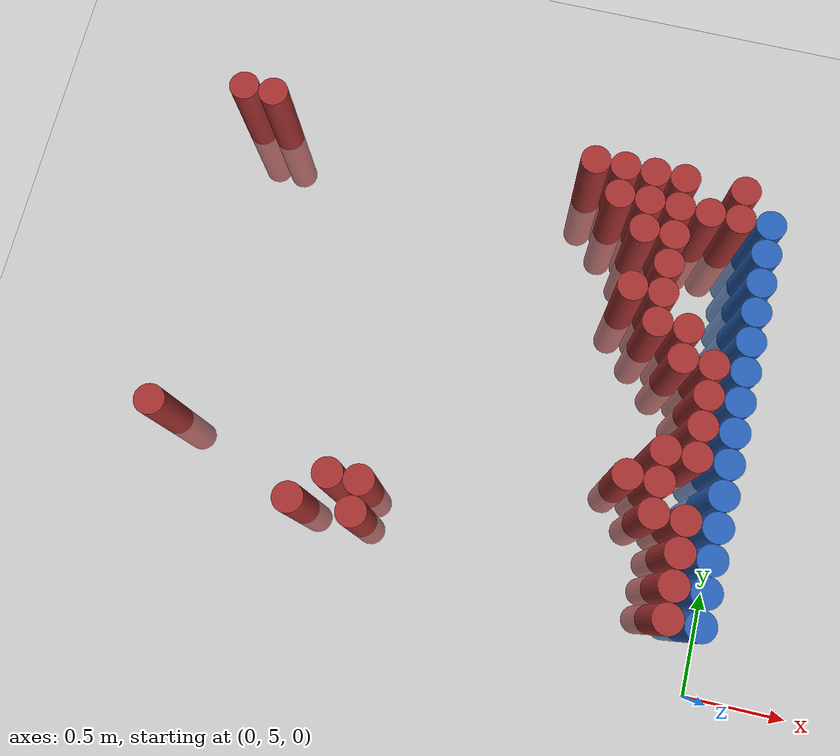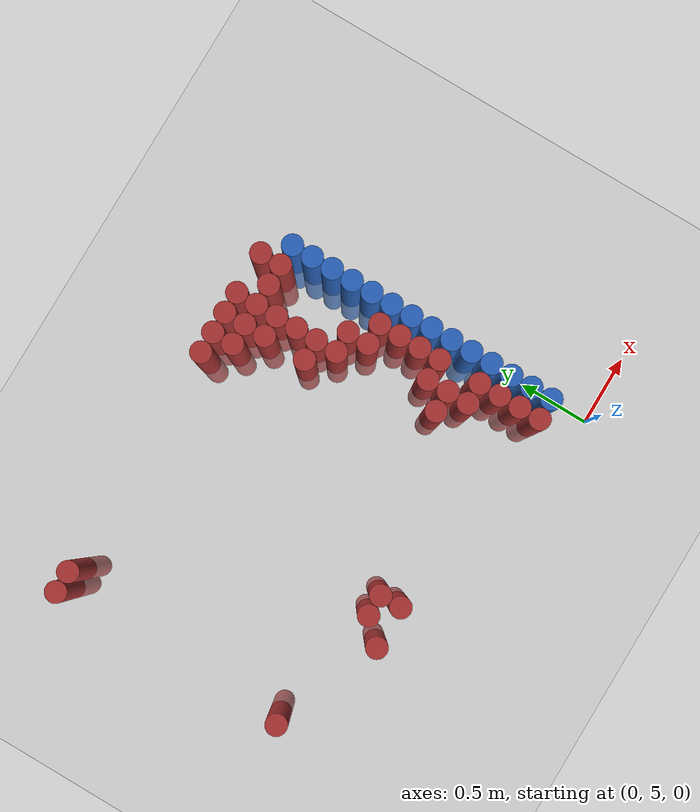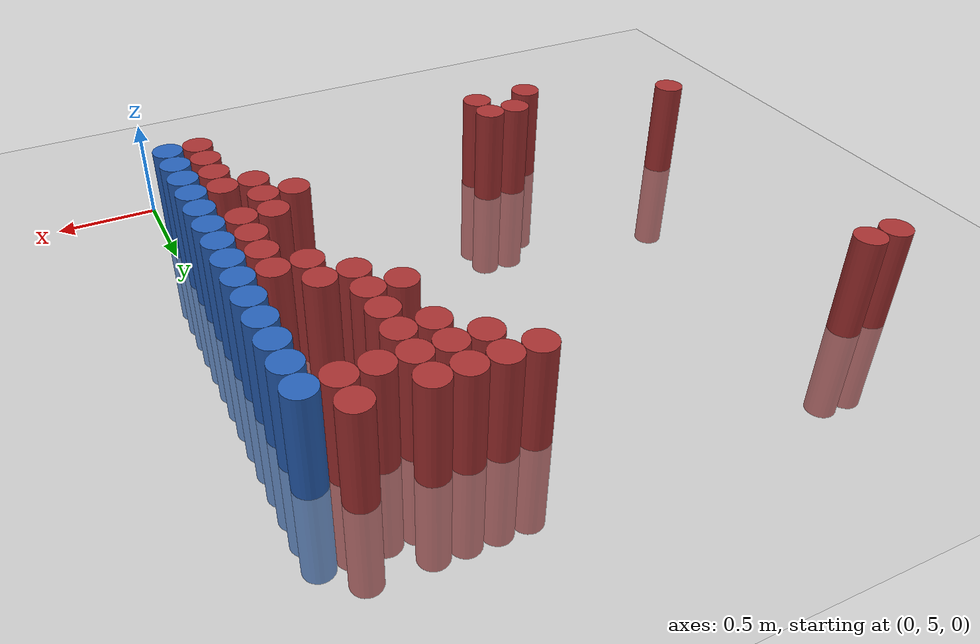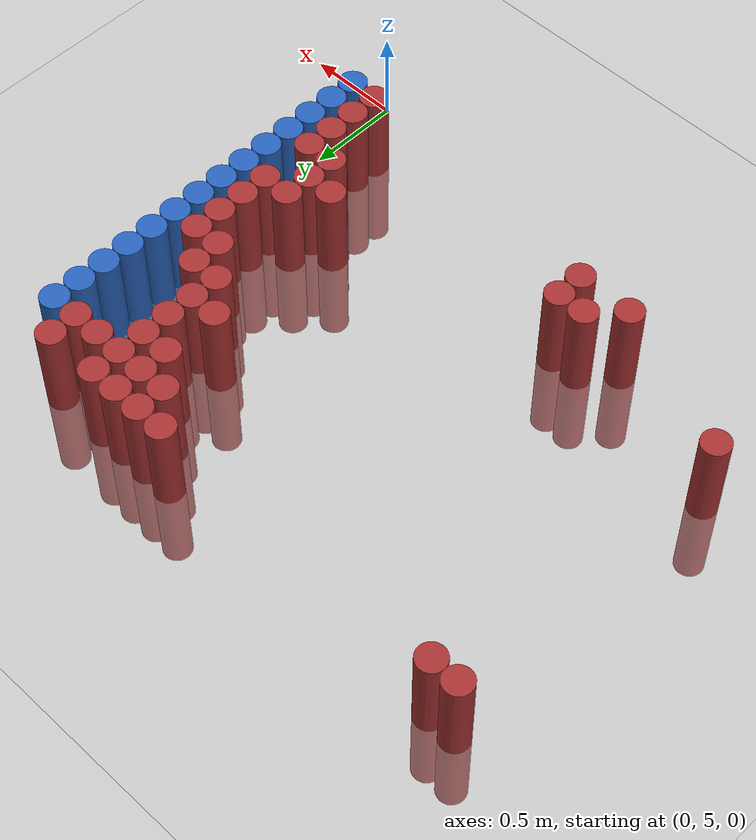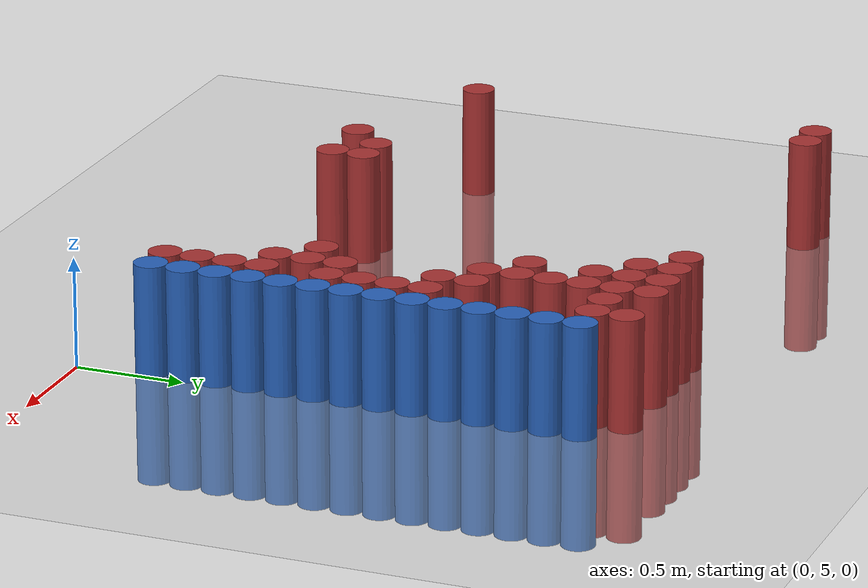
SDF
<sdf version="1.6">
 <world name="default">
  <model name="ground_plane">
   <static>1</static>
   <link name="link">
    <collision name="collision">
     <geometry><plane><normal>0 0 1</normal><size>100 100</size></plane></geometry>
     <surface><friction><ode><mu>100</mu><mu2>50</mu2></ode></friction></surface>
    </collision>
    <visual name="visual">
     <cast_shadows>0</cast_shadows>
     <geometry><plane><normal>0 0 1</normal><size>100 100</size></plane></geometry>
     <material>
      <script><uri>file://media/materials/scripts/gazebo.material</uri><name>Gazebo/Grey</name></script>
     </material>
    </visual>
   </link>
  </model>
  <model name="unit_cylinder_154">
   <static>1</static>
   <pose>-2.775000 5.775000 0.000000 0.000000 0.000000 0.000000</pose>
   <link name="link">
    <inertial>
     <mass>1</mass>
     <inertia><ixx>0.145833</ixx><ixy>0</ixy><ixz>0</ixz><iyy>0.145833</iyy><iyz>0</iyz><izz>0.125</izz></inertia>
    </inertial>
    <collision name="collision">
     <geometry><cylinder><radius>0.075000</radius><length>1</length></cylinder></geometry>
    </collision>
    <visual name="visual">
     <geometry><cylinder><radius>0.075000</radius><length>1</length></cylinder></geometry>
     <material>
      <ambient>0.648000 0.192000 0.192000 1</ambient>
      <diffuse>0.648000 0.192000 0.192000 1</diffuse>
     </material>
     <material>
      <script><name>Gazebo/Grey</name><uri>file://media/materials/scripts/gazebo.material</uri></script>
     </material>
    </visual>
   </link>
  </model>
  <model name="unit_cylinder_155">
   <static>1</static>
   <pose>-2.775000 7.425000 0.000000 0.000000 0.000000 0.000000</pose>
   <link name="link">
    <inertial>
     <mass>1</mass>
     <inertia><ixx>0.145833</ixx><ixy>0</ixy><ixz>0</ixz><iyy>0.145833</iyy><iyz>0</iyz><izz>0.125</izz></inertia>
    </inertial>
    <collision name="collision">
     <geometry><cylinder><radius>0.075000</radius><length>1</length></cylinder></geometry>
    </collision>
    <visual name="visual">
     <geometry><cylinder><radius>0.075000</radius><length>1</length></cylinder></geometry>
     <material>
      <ambient>0.648000 0.192000 0.192000 1</ambient>
      <diffuse>0.648000 0.192000 0.192000 1</diffuse>
     </material>
     <material>
      <script><name>Gazebo/Grey</name><uri>file://media/materials/scripts/gazebo.material</uri></script>
     </material>
    </visual>
   </link>
  </model>
  <model name="unit_cylinder_159">
   <static>1</static>
   <pose>-2.625000 7.425000 0.000000 0.000000 0.000000 0.000000</pose>
   <link name="link">
    <inertial>
     <mass>1</mass>
     <inertia><ixx>0.145833</ixx><ixy>0</ixy><ixz>0</ixz><iyy>0.145833</iyy><iyz>0</iyz><izz>0.125</izz></inertia>
    </inertial>
    <collision name="collision">
     <geometry><cylinder><radius>0.075000</radius><length>1</length></cylinder></geometry>
    </collision>
    <visual name="visual">
     <geometry><cylinder><radius>0.075000</radius><length>1</length></cylinder></geometry>
     <material>
      <ambient>0.648000 0.192000 0.192000 1</ambient>
      <diffuse>0.648000 0.192000 0.192000 1</diffuse>
     </material>
     <material>
      <script><name>Gazebo/Grey</name><uri>file://media/materials/scripts/gazebo.material</uri></script>
     </material>
    </visual>
   </link>
  </model>
  <model name="unit_cylinder_168">
   <static>1</static>
   <pose>-2.025000 5.475000 0.000000 0.000000 0.000000 0.000000</pose>
   <link name="link">
    <inertial>
     <mass>1</mass>
     <inertia><ixx>0.145833</ixx><ixy>0</ixy><ixz>0</ixz><iyy>0.145833</iyy><iyz>0</iyz><izz>0.125</izz></inertia>
    </inertial>
    <collision name="collision">
     <geometry><cylinder><radius>0.075000</radius><length>1</length></cylinder></geometry>
    </collision>
    <visual name="visual">
     <geometry><cylinder><radius>0.075000</radius><length>1</length></cylinder></geometry>
     <material>
      <ambient>0.648000 0.192000 0.192000 1</ambient>
      <diffuse>0.648000 0.192000 0.192000 1</diffuse>
     </material>
     <material>
      <script><name>Gazebo/Grey</name><uri>file://media/materials/scripts/gazebo.material</uri></script>
     </material>
    </visual>
   </link>
  </model>
  <model name="unit_cylinder_171">
   <static>1</static>
   <pose>-1.875000 5.625000 0.000000 0.000000 0.000000 0.000000</pose>
   <link name="link">
    <inertial>
     <mass>1</mass>
     <inertia><ixx>0.145833</ixx><ixy>0</ixy><ixz>0</ixz><iyy>0.145833</iyy><iyz>0</iyz><izz>0.125</izz></inertia>
    </inertial>
    <collision name="collision">
     <geometry><cylinder><radius>0.075000</radius><length>1</length></cylinder></geometry>
    </collision>
    <visual name="visual">
     <geometry><cylinder><radius>0.075000</radius><length>1</length></cylinder></geometry>
     <material>
      <ambient>0.648000 0.192000 0.192000 1</ambient>
      <diffuse>0.648000 0.192000 0.192000 1</diffuse>
     </material>
     <material>
      <script><name>Gazebo/Grey</name><uri>file://media/materials/scripts/gazebo.material</uri></script>
     </material>
    </visual>
   </link>
  </model>
  <model name="unit_cylinder_176">
   <static>1</static>
   <pose>-1.725000 5.475000 0.000000 0.000000 0.000000 0.000000</pose>
   <link name="link">
    <inertial>
     <mass>1</mass>
     <inertia><ixx>0.145833</ixx><ixy>0</ixy><ixz>0</ixz><iyy>0.145833</iyy><iyz>0</iyz><izz>0.125</izz></inertia>
    </inertial>
    <collision name="collision">
     <geometry><cylinder><radius>0.075000</radius><length>1</length></cylinder></geometry>
    </collision>
    <visual name="visual">
     <geometry><cylinder><radius>0.075000</radius><length>1</length></cylinder></geometry>
     <material>
      <ambient>0.648000 0.192000 0.192000 1</ambient>
      <diffuse>0.648000 0.192000 0.192000 1</diffuse>
     </material>
     <material>
      <script><name>Gazebo/Grey</name><uri>file://media/materials/scripts/gazebo.material</uri></script>
     </material>
    </visual>
   </link>
  </model>
  <model name="unit_cylinder_177">
   <static>1</static>
   <pose>-1.725000 5.625000 0.000000 0.000000 0.000000 0.000000</pose>
   <link name="link">
    <inertial>
     <mass>1</mass>
     <inertia><ixx>0.145833</ixx><ixy>0</ixy><ixz>0</ixz><iyy>0.145833</iyy><iyz>0</iyz><izz>0.125</izz></inertia>
    </inertial>
    <collision name="collision">
     <geometry><cylinder><radius>0.075000</radius><length>1</length></cylinder></geometry>
    </collision>
    <visual name="visual">
     <geometry><cylinder><radius>0.075000</radius><length>1</length></cylinder></geometry>
     <material>
      <ambient>0.648000 0.192000 0.192000 1</ambient>
      <diffuse>0.648000 0.192000 0.192000 1</diffuse>
     </material>
     <material>
      <script><name>Gazebo/Grey</name><uri>file://media/materials/scripts/gazebo.material</uri></script>
     </material>
    </visual>
   </link>
  </model>
  <model name="unit_cylinder_183">
   <static>1</static>
   <pose>-0.975000 7.425000 0.000000 0.000000 0.000000 0.000000</pose>
   <link name="link">
    <inertial>
     <mass>1</mass>
     <inertia><ixx>0.145833</ixx><ixy>0</ixy><ixz>0</ixz><iyy>0.145833</iyy><iyz>0</iyz><izz>0.125</izz></inertia>
    </inertial>
    <collision name="collision">
     <geometry><cylinder><radius>0.075000</radius><length>1</length></cylinder></geometry>
    </collision>
    <visual name="visual">
     <geometry><cylinder><radius>0.075000</radius><length>1</length></cylinder></geometry>
     <material>
      <ambient>0.648000 0.192000 0.192000 1</ambient>
      <diffuse>0.648000 0.192000 0.192000 1</diffuse>
     </material>
     <material>
      <script><name>Gazebo/Grey</name><uri>file://media/materials/scripts/gazebo.material</uri></script>
     </material>
    </visual>
   </link>
  </model>
  <model name="unit_cylinder_184">
   <static>1</static>
   <pose>-0.825000 7.275000 0.000000 0.000000 0.000000 0.000000</pose>
   <link name="link">
    <inertial>
     <mass>1</mass>
     <inertia><ixx>0.145833</ixx><ixy>0</ixy><ixz>0</ixz><iyy>0.145833</iyy><iyz>0</iyz><izz>0.125</izz></inertia>
    </inertial>
    <collision name="collision">
     <geometry><cylinder><radius>0.075000</radius><length>1</length></cylinder></geometry>
    </collision>
    <visual name="visual">
     <geometry><cylinder><radius>0.075000</radius><length>1</length></cylinder></geometry>
     <material>
      <ambient>0.648000 0.192000 0.192000 1</ambient>
      <diffuse>0.648000 0.192000 0.192000 1</diffuse>
     </material>
     <material>
      <script><name>Gazebo/Grey</name><uri>file://media/materials/scripts/gazebo.material</uri></script>
     </material>
    </visual>
   </link>
  </model>
  <model name="unit_cylinder_185">
   <static>1</static>
   <pose>-0.825000 7.425000 0.000000 0.000000 0.000000 0.000000</pose>
   <link name="link">
    <inertial>
     <mass>1</mass>
     <inertia><ixx>0.145833</ixx><ixy>0</ixy><ixz>0</ixz><iyy>0.145833</iyy><iyz>0</iyz><izz>0.125</izz></inertia>
    </inertial>
    <collision name="collision">
     <geometry><cylinder><radius>0.075000</radius><length>1</length></cylinder></geometry>
    </collision>
    <visual name="visual">
     <geometry><cylinder><radius>0.075000</radius><length>1</length></cylinder></geometry>
     <material>
      <ambient>0.648000 0.192000 0.192000 1</ambient>
      <diffuse>0.648000 0.192000 0.192000 1</diffuse>
     </material>
     <material>
      <script><name>Gazebo/Grey</name><uri>file://media/materials/scripts/gazebo.material</uri></script>
     </material>
    </visual>
   </link>
  </model>
  <model name="unit_cylinder_188">
   <static>1</static>
   <pose>-0.675000 6.825000 0.000000 0.000000 0.000000 0.000000</pose>
   <link name="link">
    <inertial>
     <mass>1</mass>
     <inertia><ixx>0.145833</ixx><ixy>0</ixy><ixz>0</ixz><iyy>0.145833</iyy><iyz>0</iyz><izz>0.125</izz></inertia>
    </inertial>
    <collision name="collision">
     <geometry><cylinder><radius>0.075000</radius><length>1</length></cylinder></geometry>
    </collision>
    <visual name="visual">
     <geometry><cylinder><radius>0.075000</radius><length>1</length></cylinder></geometry>
     <material>
      <ambient>0.648000 0.192000 0.192000 1</ambient>
      <diffuse>0.648000 0.192000 0.192000 1</diffuse>
     </material>
     <material>
      <script><name>Gazebo/Grey</name><uri>file://media/materials/scripts/gazebo.material</uri></script>
     </material>
    </visual>
   </link>
  </model>
  <model name="unit_cylinder_189">
   <static>1</static>
   <pose>-0.675000 7.125000 0.000000 0.000000 0.000000 0.000000</pose>
   <link name="link">
    <inertial>
     <mass>1</mass>
     <inertia><ixx>0.145833</ixx><ixy>0</ixy><ixz>0</ixz><iyy>0.145833</iyy><iyz>0</iyz><izz>0.125</izz></inertia>
    </inertial>
    <collision name="collision">
     <geometry><cylinder><radius>0.075000</radius><length>1</length></cylinder></geometry>
    </collision>
    <visual name="visual">
     <geometry><cylinder><radius>0.075000</radius><length>1</length></cylinder></geometry>
     <material>
      <ambient>0.648000 0.192000 0.192000 1</ambient>
      <diffuse>0.648000 0.192000 0.192000 1</diffuse>
     </material>
     <material>
      <script><name>Gazebo/Grey</name><uri>file://media/materials/scripts/gazebo.material</uri></script>
     </material>
    </visual>
   </link>
  </model>
  <model name="unit_cylinder_190">
   <static>1</static>
   <pose>-0.675000 7.275000 0.000000 0.000000 0.000000 0.000000</pose>
   <link name="link">
    <inertial>
     <mass>1</mass>
     <inertia><ixx>0.145833</ixx><ixy>0</ixy><ixz>0</ixz><iyy>0.145833</iyy><iyz>0</iyz><izz>0.125</izz></inertia>
    </inertial>
    <collision name="collision">
     <geometry><cylinder><radius>0.075000</radius><length>1</length></cylinder></geometry>
    </collision>
    <visual name="visual">
     <geometry><cylinder><radius>0.075000</radius><length>1</length></cylinder></geometry>
     <material>
      <ambient>0.648000 0.192000 0.192000 1</ambient>
      <diffuse>0.648000 0.192000 0.192000 1</diffuse>
     </material>
     <material>
      <script><name>Gazebo/Grey</name><uri>file://media/materials/scripts/gazebo.material</uri></script>
     </material>
    </visual>
   </link>
  </model>
  <model name="unit_cylinder_191">
   <static>1</static>
   <pose>-0.675000 7.425000 0.000000 0.000000 0.000000 0.000000</pose>
   <link name="link">
    <inertial>
     <mass>1</mass>
     <inertia><ixx>0.145833</ixx><ixy>0</ixy><ixz>0</ixz><iyy>0.145833</iyy><iyz>0</iyz><izz>0.125</izz></inertia>
    </inertial>
    <collision name="collision">
     <geometry><cylinder><radius>0.075000</radius><length>1</length></cylinder></geometry>
    </collision>
    <visual name="visual">
     <geometry><cylinder><radius>0.075000</radius><length>1</length></cylinder></geometry>
     <material>
      <ambient>0.648000 0.192000 0.192000 1</ambient>
      <diffuse>0.648000 0.192000 0.192000 1</diffuse>
     </material>
     <material>
      <script><name>Gazebo/Grey</name><uri>file://media/materials/scripts/gazebo.material</uri></script>
     </material>
    </visual>
   </link>
  </model>
  <model name="unit_cylinder_194">
   <static>1</static>
   <pose>-0.525000 5.925000 0.000000 0.000000 0.000000 0.000000</pose>
   <link name="link">
    <inertial>
     <mass>1</mass>
     <inertia><ixx>0.145833</ixx><ixy>0</ixy><ixz>0</ixz><iyy>0.145833</iyy><iyz>0</iyz><izz>0.125</izz></inertia>
    </inertial>
    <collision name="collision">
     <geometry><cylinder><radius>0.075000</radius><length>1</length></cylinder></geometry>
    </collision>
    <visual name="visual">
     <geometry><cylinder><radius>0.075000</radius><length>1</length></cylinder></geometry>
     <material>
      <ambient>0.648000 0.192000 0.192000 1</ambient>
      <diffuse>0.648000 0.192000 0.192000 1</diffuse>
     </material>
     <material>
      <script><name>Gazebo/Grey</name><uri>file://media/materials/scripts/gazebo.material</uri></script>
     </material>
    </visual>
   </link>
  </model>
  <model name="unit_cylinder_195">
   <static>1</static>
   <pose>-0.525000 6.675000 0.000000 0.000000 0.000000 0.000000</pose>
   <link name="link">
    <inertial>
     <mass>1</mass>
     <inertia><ixx>0.145833</ixx><ixy>0</ixy><ixz>0</ixz><iyy>0.145833</iyy><iyz>0</iyz><izz>0.125</izz></inertia>
    </inertial>
    <collision name="collision">
     <geometry><cylinder><radius>0.075000</radius><length>1</length></cylinder></geometry>
    </collision>
    <visual name="visual">
     <geometry><cylinder><radius>0.075000</radius><length>1</length></cylinder></geometry>
     <material>
      <ambient>0.648000 0.192000 0.192000 1</ambient>
      <diffuse>0.648000 0.192000 0.192000 1</diffuse>
     </material>
     <material>
      <script><name>Gazebo/Grey</name><uri>file://media/materials/scripts/gazebo.material</uri></script>
     </material>
    </visual>
   </link>
  </model>
  <model name="unit_cylinder_196">
   <static>1</static>
   <pose>-0.525000 6.825000 0.000000 0.000000 0.000000 0.000000</pose>
   <link name="link">
    <inertial>
     <mass>1</mass>
     <inertia><ixx>0.145833</ixx><ixy>0</ixy><ixz>0</ixz><iyy>0.145833</iyy><iyz>0</iyz><izz>0.125</izz></inertia>
    </inertial>
    <collision name="collision">
     <geometry><cylinder><radius>0.075000</radius><length>1</length></cylinder></geometry>
    </collision>
    <visual name="visual">
     <geometry><cylinder><radius>0.075000</radius><length>1</length></cylinder></geometry>
     <material>
      <ambient>0.648000 0.192000 0.192000 1</ambient>
      <diffuse>0.648000 0.192000 0.192000 1</diffuse>
     </material>
     <material>
      <script><name>Gazebo/Grey</name><uri>file://media/materials/scripts/gazebo.material</uri></script>
     </material>
    </visual>
   </link>
  </model>
  <model name="unit_cylinder_197">
   <static>1</static>
   <pose>-0.525000 6.975000 0.000000 0.000000 0.000000 0.000000</pose>
   <link name="link">
    <inertial>
     <mass>1</mass>
     <inertia><ixx>0.145833</ixx><ixy>0</ixy><ixz>0</ixz><iyy>0.145833</iyy><iyz>0</iyz><izz>0.125</izz></inertia>
    </inertial>
    <collision name="collision">
     <geometry><cylinder><radius>0.075000</radius><length>1</length></cylinder></geometry>
    </collision>
    <visual name="visual">
     <geometry><cylinder><radius>0.075000</radius><length>1</length></cylinder></geometry>
     <material>
      <ambient>0.648000 0.192000 0.192000 1</ambient>
      <diffuse>0.648000 0.192000 0.192000 1</diffuse>
     </material>
     <material>
      <script><name>Gazebo/Grey</name><uri>file://media/materials/scripts/gazebo.material</uri></script>
     </material>
    </visual>
   </link>
  </model>
  <model name="unit_cylinder_198">
   <static>1</static>
   <pose>-0.525000 7.125000 0.000000 0.000000 0.000000 0.000000</pose>
   <link name="link">
    <inertial>
     <mass>1</mass>
     <inertia><ixx>0.145833</ixx><ixy>0</ixy><ixz>0</ixz><iyy>0.145833</iyy><iyz>0</iyz><izz>0.125</izz></inertia>
    </inertial>
    <collision name="collision">
     <geometry><cylinder><radius>0.075000</radius><length>1</length></cylinder></geometry>
    </collision>
    <visual name="visual">
     <geometry><cylinder><radius>0.075000</radius><length>1</length></cylinder></geometry>
     <material>
      <ambient>0.648000 0.192000 0.192000 1</ambient>
      <diffuse>0.648000 0.192000 0.192000 1</diffuse>
     </material>
     <material>
      <script><name>Gazebo/Grey</name><uri>file://media/materials/scripts/gazebo.material</uri></script>
     </material>
    </visual>
   </link>
  </model>
  <model name="unit_cylinder_199">
   <static>1</static>
   <pose>-0.525000 7.275000 0.000000 0.000000 0.000000 0.000000</pose>
   <link name="link">
    <inertial>
     <mass>1</mass>
     <inertia><ixx>0.145833</ixx><ixy>0</ixy><ixz>0</ixz><iyy>0.145833</iyy><iyz>0</iyz><izz>0.125</izz></inertia>
    </inertial>
    <collision name="collision">
     <geometry><cylinder><radius>0.075000</radius><length>1</length></cylinder></geometry>
    </collision>
    <visual name="visual">
     <geometry><cylinder><radius>0.075000</radius><length>1</length></cylinder></geometry>
     <material>
      <ambient>0.648000 0.192000 0.192000 1</ambient>
      <diffuse>0.648000 0.192000 0.192000 1</diffuse>
     </material>
     <material>
      <script><name>Gazebo/Grey</name><uri>file://media/materials/scripts/gazebo.material</uri></script>
     </material>
    </visual>
   </link>
  </model>
  <model name="unit_cylinder_200">
   <static>1</static>
   <pose>-0.525000 7.425000 0.000000 0.000000 0.000000 0.000000</pose>
   <link name="link">
    <inertial>
     <mass>1</mass>
     <inertia><ixx>0.145833</ixx><ixy>0</ixy><ixz>0</ixz><iyy>0.145833</iyy><iyz>0</iyz><izz>0.125</izz></inertia>
    </inertial>
    <collision name="collision">
     <geometry><cylinder><radius>0.075000</radius><length>1</length></cylinder></geometry>
    </collision>
    <visual name="visual">
     <geometry><cylinder><radius>0.075000</radius><length>1</length></cylinder></geometry>
     <material>
      <ambient>0.648000 0.192000 0.192000 1</ambient>
      <diffuse>0.648000 0.192000 0.192000 1</diffuse>
     </material>
     <material>
      <script><name>Gazebo/Grey</name><uri>file://media/materials/scripts/gazebo.material</uri></script>
     </material>
    </visual>
   </link>
  </model>
  <model name="unit_cylinder_201">
   <static>1</static>
   <pose>-0.375000 5.775000 0.000000 0.000000 0.000000 0.000000</pose>
   <link name="link">
    <inertial>
     <mass>1</mass>
     <inertia><ixx>0.145833</ixx><ixy>0</ixy><ixz>0</ixz><iyy>0.145833</iyy><iyz>0</iyz><izz>0.125</izz></inertia>
    </inertial>
    <collision name="collision">
     <geometry><cylinder><radius>0.075000</radius><length>1</length></cylinder></geometry>
    </collision>
    <visual name="visual">
     <geometry><cylinder><radius>0.075000</radius><length>1</length></cylinder></geometry>
     <material>
      <ambient>0.648000 0.192000 0.192000 1</ambient>
      <diffuse>0.648000 0.192000 0.192000 1</diffuse>
     </material>
     <material>
      <script><name>Gazebo/Grey</name><uri>file://media/materials/scripts/gazebo.material</uri></script>
     </material>
    </visual>
   </link>
  </model>
  <model name="unit_cylinder_202">
   <static>1</static>
   <pose>-0.375000 5.925000 0.000000 0.000000 0.000000 0.000000</pose>
   <link name="link">
    <inertial>
     <mass>1</mass>
     <inertia><ixx>0.145833</ixx><ixy>0</ixy><ixz>0</ixz><iyy>0.145833</iyy><iyz>0</iyz><izz>0.125</izz></inertia>
    </inertial>
    <collision name="collision">
     <geometry><cylinder><radius>0.075000</radius><length>1</length></cylinder></geometry>
    </collision>
    <visual name="visual">
     <geometry><cylinder><radius>0.075000</radius><length>1</length></cylinder></geometry>
     <material>
      <ambient>0.648000 0.192000 0.192000 1</ambient>
      <diffuse>0.648000 0.192000 0.192000 1</diffuse>
     </material>
     <material>
      <script><name>Gazebo/Grey</name><uri>file://media/materials/scripts/gazebo.material</uri></script>
     </material>
    </visual>
   </link>
  </model>
  <model name="unit_cylinder_203">
   <static>1</static>
   <pose>-0.375000 6.075000 0.000000 0.000000 0.000000 0.000000</pose>
   <link name="link">
    <inertial>
     <mass>1</mass>
     <inertia><ixx>0.145833</ixx><ixy>0</ixy><ixz>0</ixz><iyy>0.145833</iyy><iyz>0</iyz><izz>0.125</izz></inertia>
    </inertial>
    <collision name="collision">
     <geometry><cylinder><radius>0.075000</radius><length>1</length></cylinder></geometry>
    </collision>
    <visual name="visual">
     <geometry><cylinder><radius>0.075000</radius><length>1</length></cylinder></geometry>
     <material>
      <ambient>0.648000 0.192000 0.192000 1</ambient>
      <diffuse>0.648000 0.192000 0.192000 1</diffuse>
     </material>
     <material>
      <script><name>Gazebo/Grey</name><uri>file://media/materials/scripts/gazebo.material</uri></script>
     </material>
    </visual>
   </link>
  </model>
  <model name="unit_cylinder_204">
   <static>1</static>
   <pose>-0.375000 6.525000 0.000000 0.000000 0.000000 0.000000</pose>
   <link name="link">
    <inertial>
     <mass>1</mass>
     <inertia><ixx>0.145833</ixx><ixy>0</ixy><ixz>0</ixz><iyy>0.145833</iyy><iyz>0</iyz><izz>0.125</izz></inertia>
    </inertial>
    <collision name="collision">
     <geometry><cylinder><radius>0.075000</radius><length>1</length></cylinder></geometry>
    </collision>
    <visual name="visual">
     <geometry><cylinder><radius>0.075000</radius><length>1</length></cylinder></geometry>
     <material>
      <ambient>0.648000 0.192000 0.192000 1</ambient>
      <diffuse>0.648000 0.192000 0.192000 1</diffuse>
     </material>
     <material>
      <script><name>Gazebo/Grey</name><uri>file://media/materials/scripts/gazebo.material</uri></script>
     </material>
    </visual>
   </link>
  </model>
  <model name="unit_cylinder_205">
   <static>1</static>
   <pose>-0.375000 6.675000 0.000000 0.000000 0.000000 0.000000</pose>
   <link name="link">
    <inertial>
     <mass>1</mass>
     <inertia><ixx>0.145833</ixx><ixy>0</ixy><ixz>0</ixz><iyy>0.145833</iyy><iyz>0</iyz><izz>0.125</izz></inertia>
    </inertial>
    <collision name="collision">
     <geometry><cylinder><radius>0.075000</radius><length>1</length></cylinder></geometry>
    </collision>
    <visual name="visual">
     <geometry><cylinder><radius>0.075000</radius><length>1</length></cylinder></geometry>
     <material>
      <ambient>0.648000 0.192000 0.192000 1</ambient>
      <diffuse>0.648000 0.192000 0.192000 1</diffuse>
     </material>
     <material>
      <script><name>Gazebo/Grey</name><uri>file://media/materials/scripts/gazebo.material</uri></script>
     </material>
    </visual>
   </link>
  </model>
  <model name="unit_cylinder_206">
   <static>1</static>
   <pose>-0.375000 7.275000 0.000000 0.000000 0.000000 0.000000</pose>
   <link name="link">
    <inertial>
     <mass>1</mass>
     <inertia><ixx>0.145833</ixx><ixy>0</ixy><ixz>0</ixz><iyy>0.145833</iyy><iyz>0</iyz><izz>0.125</izz></inertia>
    </inertial>
    <collision name="collision">
     <geometry><cylinder><radius>0.075000</radius><length>1</length></cylinder></geometry>
    </collision>
    <visual name="visual">
     <geometry><cylinder><radius>0.075000</radius><length>1</length></cylinder></geometry>
     <material>
      <ambient>0.648000 0.192000 0.192000 1</ambient>
      <diffuse>0.648000 0.192000 0.192000 1</diffuse>
     </material>
     <material>
      <script><name>Gazebo/Grey</name><uri>file://media/materials/scripts/gazebo.material</uri></script>
     </material>
    </visual>
   </link>
  </model>
  <model name="unit_cylinder_208">
   <static>1</static>
   <pose>-0.225000 5.325000 0.000000 0.000000 0.000000 0.000000</pose>
   <link name="link">
    <inertial>
     <mass>1</mass>
     <inertia><ixx>0.145833</ixx><ixy>0</ixy><ixz>0</ixz><iyy>0.145833</iyy><iyz>0</iyz><izz>0.125</izz></inertia>
    </inertial>
    <collision name="collision">
     <geometry><cylinder><radius>0.075000</radius><length>1</length></cylinder></geometry>
    </collision>
    <visual name="visual">
     <geometry><cylinder><radius>0.075000</radius><length>1</length></cylinder></geometry>
     <material>
      <ambient>0.648000 0.192000 0.192000 1</ambient>
      <diffuse>0.648000 0.192000 0.192000 1</diffuse>
     </material>
     <material>
      <script><name>Gazebo/Grey</name><uri>file://media/materials/scripts/gazebo.material</uri></script>
     </material>
    </visual>
   </link>
  </model>
  <model name="unit_cylinder_209">
   <static>1</static>
   <pose>-0.225000 5.475000 0.000000 0.000000 0.000000 0.000000</pose>
   <link name="link">
    <inertial>
     <mass>1</mass>
     <inertia><ixx>0.145833</ixx><ixy>0</ixy><ixz>0</ixz><iyy>0.145833</iyy><iyz>0</iyz><izz>0.125</izz></inertia>
    </inertial>
    <collision name="collision">
     <geometry><cylinder><radius>0.075000</radius><length>1</length></cylinder></geometry>
    </collision>
    <visual name="visual">
     <geometry><cylinder><radius>0.075000</radius><length>1</length></cylinder></geometry>
     <material>
      <ambient>0.648000 0.192000 0.192000 1</ambient>
      <diffuse>0.648000 0.192000 0.192000 1</diffuse>
     </material>
     <material>
      <script><name>Gazebo/Grey</name><uri>file://media/materials/scripts/gazebo.material</uri></script>
     </material>
    </visual>
   </link>
  </model>
  <model name="unit_cylinder_210">
   <static>1</static>
   <pose>-0.225000 5.625000 0.000000 0.000000 0.000000 0.000000</pose>
   <link name="link">
    <inertial>
     <mass>1</mass>
     <inertia><ixx>0.145833</ixx><ixy>0</ixy><ixz>0</ixz><iyy>0.145833</iyy><iyz>0</iyz><izz>0.125</izz></inertia>
    </inertial>
    <collision name="collision">
     <geometry><cylinder><radius>0.075000</radius><length>1</length></cylinder></geometry>
    </collision>
    <visual name="visual">
     <geometry><cylinder><radius>0.075000</radius><length>1</length></cylinder></geometry>
     <material>
      <ambient>0.648000 0.192000 0.192000 1</ambient>
      <diffuse>0.648000 0.192000 0.192000 1</diffuse>
     </material>
     <material>
      <script><name>Gazebo/Grey</name><uri>file://media/materials/scripts/gazebo.material</uri></script>
     </material>
    </visual>
   </link>
  </model>
  <model name="unit_cylinder_211">
   <static>1</static>
   <pose>-0.225000 5.775000 0.000000 0.000000 0.000000 0.000000</pose>
   <link name="link">
    <inertial>
     <mass>1</mass>
     <inertia><ixx>0.145833</ixx><ixy>0</ixy><ixz>0</ixz><iyy>0.145833</iyy><iyz>0</iyz><izz>0.125</izz></inertia>
    </inertial>
    <collision name="collision">
     <geometry><cylinder><radius>0.075000</radius><length>1</length></cylinder></geometry>
    </collision>
    <visual name="visual">
     <geometry><cylinder><radius>0.075000</radius><length>1</length></cylinder></geometry>
     <material>
      <ambient>0.648000 0.192000 0.192000 1</ambient>
      <diffuse>0.648000 0.192000 0.192000 1</diffuse>
     </material>
     <material>
      <script><name>Gazebo/Grey</name><uri>file://media/materials/scripts/gazebo.material</uri></script>
     </material>
    </visual>
   </link>
  </model>
  <model name="unit_cylinder_212">
   <static>1</static>
   <pose>-0.225000 6.075000 0.000000 0.000000 0.000000 0.000000</pose>
   <link name="link">
    <inertial>
     <mass>1</mass>
     <inertia><ixx>0.145833</ixx><ixy>0</ixy><ixz>0</ixz><iyy>0.145833</iyy><iyz>0</iyz><izz>0.125</izz></inertia>
    </inertial>
    <collision name="collision">
     <geometry><cylinder><radius>0.075000</radius><length>1</length></cylinder></geometry>
    </collision>
    <visual name="visual">
     <geometry><cylinder><radius>0.075000</radius><length>1</length></cylinder></geometry>
     <material>
      <ambient>0.648000 0.192000 0.192000 1</ambient>
      <diffuse>0.648000 0.192000 0.192000 1</diffuse>
     </material>
     <material>
      <script><name>Gazebo/Grey</name><uri>file://media/materials/scripts/gazebo.material</uri></script>
     </material>
    </visual>
   </link>
  </model>
  <model name="unit_cylinder_213">
   <static>1</static>
   <pose>-0.225000 6.225000 0.000000 0.000000 0.000000 0.000000</pose>
   <link name="link">
    <inertial>
     <mass>1</mass>
     <inertia><ixx>0.145833</ixx><ixy>0</ixy><ixz>0</ixz><iyy>0.145833</iyy><iyz>0</iyz><izz>0.125</izz></inertia>
    </inertial>
    <collision name="collision">
     <geometry><cylinder><radius>0.075000</radius><length>1</length></cylinder></geometry>
    </collision>
    <visual name="visual">
     <geometry><cylinder><radius>0.075000</radius><length>1</length></cylinder></geometry>
     <material>
      <ambient>0.648000 0.192000 0.192000 1</ambient>
      <diffuse>0.648000 0.192000 0.192000 1</diffuse>
     </material>
     <material>
      <script><name>Gazebo/Grey</name><uri>file://media/materials/scripts/gazebo.material</uri></script>
     </material>
    </visual>
   </link>
  </model>
  <model name="unit_cylinder_214">
   <static>1</static>
   <pose>-0.225000 6.375000 0.000000 0.000000 0.000000 0.000000</pose>
   <link name="link">
    <inertial>
     <mass>1</mass>
     <inertia><ixx>0.145833</ixx><ixy>0</ixy><ixz>0</ixz><iyy>0.145833</iyy><iyz>0</iyz><izz>0.125</izz></inertia>
    </inertial>
    <collision name="collision">
     <geometry><cylinder><radius>0.075000</radius><length>1</length></cylinder></geometry>
    </collision>
    <visual name="visual">
     <geometry><cylinder><radius>0.075000</radius><length>1</length></cylinder></geometry>
     <material>
      <ambient>0.648000 0.192000 0.192000 1</ambient>
      <diffuse>0.648000 0.192000 0.192000 1</diffuse>
     </material>
     <material>
      <script><name>Gazebo/Grey</name><uri>file://media/materials/scripts/gazebo.material</uri></script>
     </material>
    </visual>
   </link>
  </model>
  <model name="unit_cylinder_215">
   <static>1</static>
   <pose>-0.225000 6.525000 0.000000 0.000000 0.000000 0.000000</pose>
   <link name="link">
    <inertial>
     <mass>1</mass>
     <inertia><ixx>0.145833</ixx><ixy>0</ixy><ixz>0</ixz><iyy>0.145833</iyy><iyz>0</iyz><izz>0.125</izz></inertia>
    </inertial>
    <collision name="collision">
     <geometry><cylinder><radius>0.075000</radius><length>1</length></cylinder></geometry>
    </collision>
    <visual name="visual">
     <geometry><cylinder><radius>0.075000</radius><length>1</length></cylinder></geometry>
     <material>
      <ambient>0.648000 0.192000 0.192000 1</ambient>
      <diffuse>0.648000 0.192000 0.192000 1</diffuse>
     </material>
     <material>
      <script><name>Gazebo/Grey</name><uri>file://media/materials/scripts/gazebo.material</uri></script>
     </material>
    </visual>
   </link>
  </model>
  <model name="unit_cylinder_216">
   <static>1</static>
   <pose>-0.225000 7.275000 0.000000 0.000000 0.000000 0.000000</pose>
   <link name="link">
    <inertial>
     <mass>1</mass>
     <inertia><ixx>0.145833</ixx><ixy>0</ixy><ixz>0</ixz><iyy>0.145833</iyy><iyz>0</iyz><izz>0.125</izz></inertia>
    </inertial>
    <collision name="collision">
     <geometry><cylinder><radius>0.075000</radius><length>1</length></cylinder></geometry>
    </collision>
    <visual name="visual">
     <geometry><cylinder><radius>0.075000</radius><length>1</length></cylinder></geometry>
     <material>
      <ambient>0.648000 0.192000 0.192000 1</ambient>
      <diffuse>0.648000 0.192000 0.192000 1</diffuse>
     </material>
     <material>
      <script><name>Gazebo/Grey</name><uri>file://media/materials/scripts/gazebo.material</uri></script>
     </material>
    </visual>
   </link>
  </model>
  <model name="unit_cylinder_217">
   <static>1</static>
   <pose>-0.225000 7.425000 0.000000 0.000000 0.000000 0.000000</pose>
   <link name="link">
    <inertial>
     <mass>1</mass>
     <inertia><ixx>0.145833</ixx><ixy>0</ixy><ixz>0</ixz><iyy>0.145833</iyy><iyz>0</iyz><izz>0.125</izz></inertia>
    </inertial>
    <collision name="collision">
     <geometry><cylinder><radius>0.075000</radius><length>1</length></cylinder></geometry>
    </collision>
    <visual name="visual">
     <geometry><cylinder><radius>0.075000</radius><length>1</length></cylinder></geometry>
     <material>
      <ambient>0.648000 0.192000 0.192000 1</ambient>
      <diffuse>0.648000 0.192000 0.192000 1</diffuse>
     </material>
     <material>
      <script><name>Gazebo/Grey</name><uri>file://media/materials/scripts/gazebo.material</uri></script>
     </material>
    </visual>
   </link>
  </model>
  <model name="unit_cylinder_225">
   <static>1</static>
   <pose>-0.075000 5.325000 0.000000 0.000000 0.000000 0.000000</pose>
   <link name="link">
    <inertial>
     <mass>1</mass>
     <inertia><ixx>0.145833</ixx><ixy>0</ixy><ixz>0</ixz><iyy>0.145833</iyy><iyz>0</iyz><izz>0.125</izz></inertia>
    </inertial>
    <collision name="collision">
     <geometry><cylinder><radius>0.075000</radius><length>1</length></cylinder></geometry>
    </collision>
    <visual name="visual">
     <geometry><cylinder><radius>0.075000</radius><length>1</length></cylinder></geometry>
     <material>
      <ambient>0.152000 0.379000 0.720000 1</ambient>
      <diffuse>0.152000 0.379000 0.720000 1</diffuse>
     </material>
     <material>
      <script><name>Gazebo/Grey</name><uri>file://media/materials/scripts/gazebo.material</uri></script>
     </material>
    </visual>
   </link>
  </model>
  <model name="unit_cylinder_226">
   <static>1</static>
   <pose>-0.075000 5.475000 0.000000 0.000000 0.000000 0.000000</pose>
   <link name="link">
    <inertial>
     <mass>1</mass>
     <inertia><ixx>0.145833</ixx><ixy>0</ixy><ixz>0</ixz><iyy>0.145833</iyy><iyz>0</iyz><izz>0.125</izz></inertia>
    </inertial>
    <collision name="collision">
     <geometry><cylinder><radius>0.075000</radius><length>1</length></cylinder></geometry>
    </collision>
    <visual name="visual">
     <geometry><cylinder><radius>0.075000</radius><length>1</length></cylinder></geometry>
     <material>
      <ambient>0.152000 0.379000 0.720000 1</ambient>
      <diffuse>0.152000 0.379000 0.720000 1</diffuse>
     </material>
     <material>
      <script><name>Gazebo/Grey</name><uri>file://media/materials/scripts/gazebo.material</uri></script>
     </material>
    </visual>
   </link>
  </model>
  <model name="unit_cylinder_227">
   <static>1</static>
   <pose>-0.075000 5.625000 0.000000 0.000000 0.000000 0.000000</pose>
   <link name="link">
    <inertial>
     <mass>1</mass>
     <inertia><ixx>0.145833</ixx><ixy>0</ixy><ixz>0</ixz><iyy>0.145833</iyy><iyz>0</iyz><izz>0.125</izz></inertia>
    </inertial>
    <collision name="collision">
     <geometry><cylinder><radius>0.075000</radius><length>1</length></cylinder></geometry>
    </collision>
    <visual name="visual">
     <geometry><cylinder><radius>0.075000</radius><length>1</length></cylinder></geometry>
     <material>
      <ambient>0.152000 0.379000 0.720000 1</ambient>
      <diffuse>0.152000 0.379000 0.720000 1</diffuse>
     </material>
     <material>
      <script><name>Gazebo/Grey</name><uri>file://media/materials/scripts/gazebo.material</uri></script>
     </material>
    </visual>
   </link>
  </model>
  <model name="unit_cylinder_228">
   <static>1</static>
   <pose>-0.075000 5.775000 0.000000 0.000000 0.000000 0.000000</pose>
   <link name="link">
    <inertial>
     <mass>1</mass>
     <inertia><ixx>0.145833</ixx><ixy>0</ixy><ixz>0</ixz><iyy>0.145833</iyy><iyz>0</iyz><izz>0.125</izz></inertia>
    </inertial>
    <collision name="collision">
     <geometry><cylinder><radius>0.075000</radius><length>1</length></cylinder></geometry>
    </collision>
    <visual name="visual">
     <geometry><cylinder><radius>0.075000</radius><length>1</length></cylinder></geometry>
     <material>
      <ambient>0.152000 0.379000 0.720000 1</ambient>
      <diffuse>0.152000 0.379000 0.720000 1</diffuse>
     </material>
     <material>
      <script><name>Gazebo/Grey</name><uri>file://media/materials/scripts/gazebo.material</uri></script>
     </material>
    </visual>
   </link>
  </model>
  <model name="unit_cylinder_229">
   <static>1</static>
   <pose>-0.075000 5.925000 0.000000 0.000000 0.000000 0.000000</pose>
   <link name="link">
    <inertial>
     <mass>1</mass>
     <inertia><ixx>0.145833</ixx><ixy>0</ixy><ixz>0</ixz><iyy>0.145833</iyy><iyz>0</iyz><izz>0.125</izz></inertia>
    </inertial>
    <collision name="collision">
     <geometry><cylinder><radius>0.075000</radius><length>1</length></cylinder></geometry>
    </collision>
    <visual name="visual">
     <geometry><cylinder><radius>0.075000</radius><length>1</length></cylinder></geometry>
     <material>
      <ambient>0.152000 0.379000 0.720000 1</ambient>
      <diffuse>0.152000 0.379000 0.720000 1</diffuse>
     </material>
     <material>
      <script><name>Gazebo/Grey</name><uri>file://media/materials/scripts/gazebo.material</uri></script>
     </material>
    </visual>
   </link>
  </model>
  <model name="unit_cylinder_230">
   <static>1</static>
   <pose>-0.075000 6.075000 0.000000 0.000000 0.000000 0.000000</pose>
   <link name="link">
    <inertial>
     <mass>1</mass>
     <inertia><ixx>0.145833</ixx><ixy>0</ixy><ixz>0</ixz><iyy>0.145833</iyy><iyz>0</iyz><izz>0.125</izz></inertia>
    </inertial>
    <collision name="collision">
     <geometry><cylinder><radius>0.075000</radius><length>1</length></cylinder></geometry>
    </collision>
    <visual name="visual">
     <geometry><cylinder><radius>0.075000</radius><length>1</length></cylinder></geometry>
     <material>
      <ambient>0.152000 0.379000 0.720000 1</ambient>
      <diffuse>0.152000 0.379000 0.720000 1</diffuse>
     </material>
     <material>
      <script><name>Gazebo/Grey</name><uri>file://media/materials/scripts/gazebo.material</uri></script>
     </material>
    </visual>
   </link>
  </model>
  <model name="unit_cylinder_231">
   <static>1</static>
   <pose>-0.075000 6.225000 0.000000 0.000000 0.000000 0.000000</pose>
   <link name="link">
    <inertial>
     <mass>1</mass>
     <inertia><ixx>0.145833</ixx><ixy>0</ixy><ixz>0</ixz><iyy>0.145833</iyy><iyz>0</iyz><izz>0.125</izz></inertia>
    </inertial>
    <collision name="collision">
     <geometry><cylinder><radius>0.075000</radius><length>1</length></cylinder></geometry>
    </collision>
    <visual name="visual">
     <geometry><cylinder><radius>0.075000</radius><length>1</length></cylinder></geometry>
     <material>
      <ambient>0.152000 0.379000 0.720000 1</ambient>
      <diffuse>0.152000 0.379000 0.720000 1</diffuse>
     </material>
     <material>
      <script><name>Gazebo/Grey</name><uri>file://media/materials/scripts/gazebo.material</uri></script>
     </material>
    </visual>
   </link>
  </model>
  <model name="unit_cylinder_232">
   <static>1</static>
   <pose>-0.075000 6.375000 0.000000 0.000000 0.000000 0.000000</pose>
   <link name="link">
    <inertial>
     <mass>1</mass>
     <inertia><ixx>0.145833</ixx><ixy>0</ixy><ixz>0</ixz><iyy>0.145833</iyy><iyz>0</iyz><izz>0.125</izz></inertia>
    </inertial>
    <collision name="collision">
     <geometry><cylinder><radius>0.075000</radius><length>1</length></cylinder></geometry>
    </collision>
    <visual name="visual">
     <geometry><cylinder><radius>0.075000</radius><length>1</length></cylinder></geometry>
     <material>
      <ambient>0.152000 0.379000 0.720000 1</ambient>
      <diffuse>0.152000 0.379000 0.720000 1</diffuse>
     </material>
     <material>
      <script><name>Gazebo/Grey</name><uri>file://media/materials/scripts/gazebo.material</uri></script>
     </material>
    </visual>
   </link>
  </model>
  <model name="unit_cylinder_233">
   <static>1</static>
   <pose>-0.075000 6.525000 0.000000 0.000000 0.000000 0.000000</pose>
   <link name="link">
    <inertial>
     <mass>1</mass>
     <inertia><ixx>0.145833</ixx><ixy>0</ixy><ixz>0</ixz><iyy>0.145833</iyy><iyz>0</iyz><izz>0.125</izz></inertia>
    </inertial>
    <collision name="collision">
     <geometry><cylinder><radius>0.075000</radius><length>1</length></cylinder></geometry>
    </collision>
    <visual name="visual">
     <geometry><cylinder><radius>0.075000</radius><length>1</length></cylinder></geometry>
     <material>
      <ambient>0.152000 0.379000 0.720000 1</ambient>
      <diffuse>0.152000 0.379000 0.720000 1</diffuse>
     </material>
     <material>
      <script><name>Gazebo/Grey</name><uri>file://media/materials/scripts/gazebo.material</uri></script>
     </material>
    </visual>
   </link>
  </model>
  <model name="unit_cylinder_234">
   <static>1</static>
   <pose>-0.075000 6.675000 0.000000 0.000000 0.000000 0.000000</pose>
   <link name="link">
    <inertial>
     <mass>1</mass>
     <inertia><ixx>0.145833</ixx><ixy>0</ixy><ixz>0</ixz><iyy>0.145833</iyy><iyz>0</iyz><izz>0.125</izz></inertia>
    </inertial>
    <collision name="collision">
     <geometry><cylinder><radius>0.075000</radius><length>1</length></cylinder></geometry>
    </collision>
    <visual name="visual">
     <geometry><cylinder><radius>0.075000</radius><length>1</length></cylinder></geometry>
     <material>
      <ambient>0.152000 0.379000 0.720000 1</ambient>
      <diffuse>0.152000 0.379000 0.720000 1</diffuse>
     </material>
     <material>
      <script><name>Gazebo/Grey</name><uri>file://media/materials/scripts/gazebo.material</uri></script>
     </material>
    </visual>
   </link>
  </model>
  <model name="unit_cylinder_235">
   <static>1</static>
   <pose>-0.075000 6.825000 0.000000 0.000000 0.000000 0.000000</pose>
   <link name="link">
    <inertial>
     <mass>1</mass>
     <inertia><ixx>0.145833</ixx><ixy>0</ixy><ixz>0</ixz><iyy>0.145833</iyy><iyz>0</iyz><izz>0.125</izz></inertia>
    </inertial>
    <collision name="collision">
     <geometry><cylinder><radius>0.075000</radius><length>1</length></cylinder></geometry>
    </collision>
    <visual name="visual">
     <geometry><cylinder><radius>0.075000</radius><length>1</length></cylinder></geometry>
     <material>
      <ambient>0.152000 0.379000 0.720000 1</ambient>
      <diffuse>0.152000 0.379000 0.720000 1</diffuse>
     </material>
     <material>
      <script><name>Gazebo/Grey</name><uri>file://media/materials/scripts/gazebo.material</uri></script>
     </material>
    </visual>
   </link>
  </model>
  <model name="unit_cylinder_236">
   <static>1</static>
   <pose>-0.075000 6.975000 0.000000 0.000000 0.000000 0.000000</pose>
   <link name="link">
    <inertial>
     <mass>1</mass>
     <inertia><ixx>0.145833</ixx><ixy>0</ixy><ixz>0</ixz><iyy>0.145833</iyy><iyz>0</iyz><izz>0.125</izz></inertia>
    </inertial>
    <collision name="collision">
     <geometry><cylinder><radius>0.075000</radius><length>1</length></cylinder></geometry>
    </collision>
    <visual name="visual">
     <geometry><cylinder><radius>0.075000</radius><length>1</length></cylinder></geometry>
     <material>
      <ambient>0.152000 0.379000 0.720000 1</ambient>
      <diffuse>0.152000 0.379000 0.720000 1</diffuse>
     </material>
     <material>
      <script><name>Gazebo/Grey</name><uri>file://media/materials/scripts/gazebo.material</uri></script>
     </material>
    </visual>
   </link>
  </model>
  <model name="unit_cylinder_237">
   <static>1</static>
   <pose>-0.075000 7.125000 0.000000 0.000000 0.000000 0.000000</pose>
   <link name="link">
    <inertial>
     <mass>1</mass>
     <inertia><ixx>0.145833</ixx><ixy>0</ixy><ixz>0</ixz><iyy>0.145833</iyy><iyz>0</iyz><izz>0.125</izz></inertia>
    </inertial>
    <collision name="collision">
     <geometry><cylinder><radius>0.075000</radius><length>1</length></cylinder></geometry>
    </collision>
    <visual name="visual">
     <geometry><cylinder><radius>0.075000</radius><length>1</length></cylinder></geometry>
     <material>
      <ambient>0.152000 0.379000 0.720000 1</ambient>
      <diffuse>0.152000 0.379000 0.720000 1</diffuse>
     </material>
     <material>
      <script><name>Gazebo/Grey</name><uri>file://media/materials/scripts/gazebo.material</uri></script>
     </material>
    </visual>
   </link>
  </model>
  <model name="unit_cylinder_238">
   <static>1</static>
   <pose>-0.075000 7.275000 0.000000 0.000000 0.000000 0.000000</pose>
   <link name="link">
    <inertial>
     <mass>1</mass>
     <inertia><ixx>0.145833</ixx><ixy>0</ixy><ixz>0</ixz><iyy>0.145833</iyy><iyz>0</iyz><izz>0.125</izz></inertia>
    </inertial>
    <collision name="collision">
     <geometry><cylinder><radius>0.075000</radius><length>1</length></cylinder></geometry>
    </collision>
    <visual name="visual">
     <geometry><cylinder><radius>0.075000</radius><length>1</length></cylinder></geometry>
     <material>
      <ambient>0.152000 0.379000 0.720000 1</ambient>
      <diffuse>0.152000 0.379000 0.720000 1</diffuse>
     </material>
     <material>
      <script><name>Gazebo/Grey</name><uri>file://media/materials/scripts/gazebo.material</uri></script>
     </material>
    </visual>
   </link>
  </model>
 </world>
</sdf>
